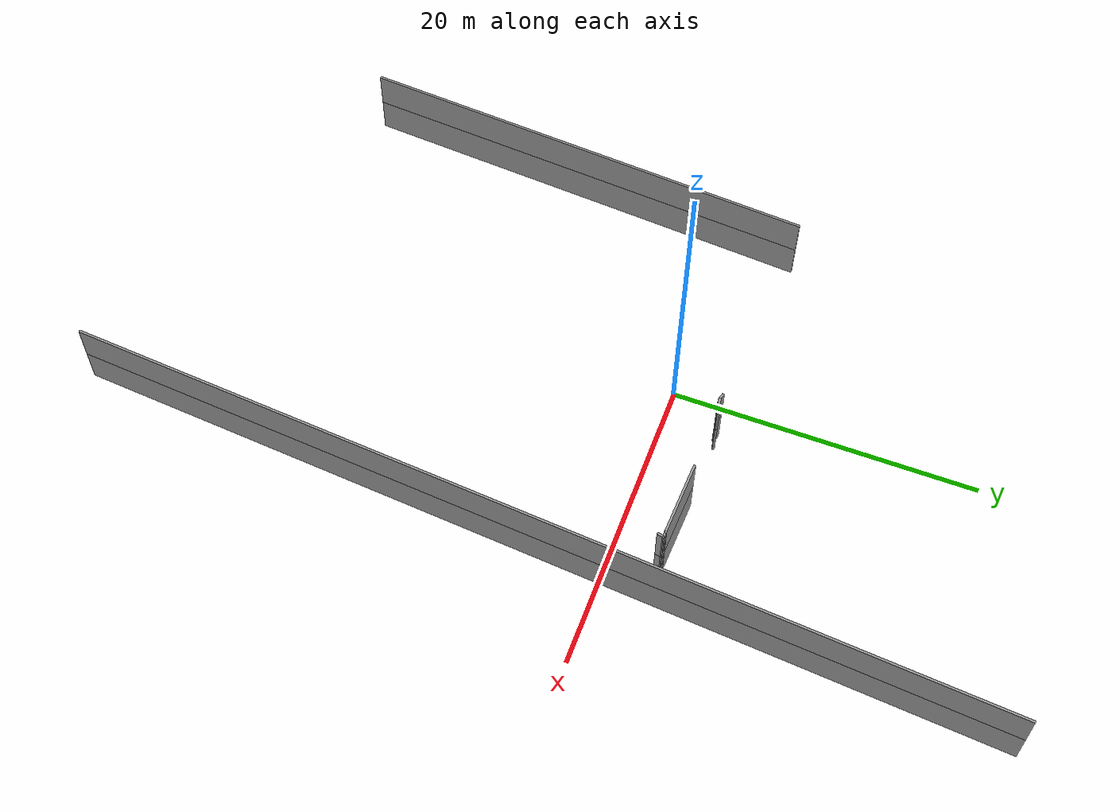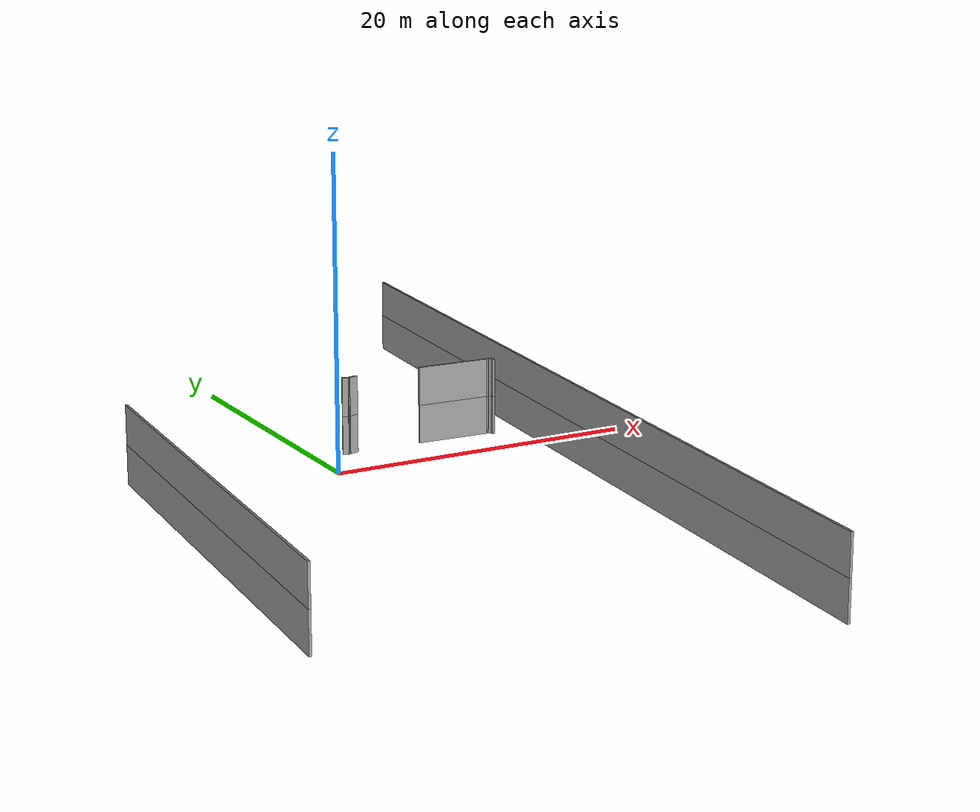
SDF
<sdf version="1.7">
 <model name="EnvDC01">
  <link name="Floor_0">
   <pose>0 0 2.5 0 -0 0</pose>
   <inertial>
    <mass>1</mass>
    <inertia><ixx>1</ixx><ixy>0</ixy><ixz>0</ixz><iyy>1</iyy><iyz>0</iyz><izz>1</izz></inertia>
   </inertial>
   <collision name="Floor_0_Collision">
    <pose>0 0 0.05 0 -0 0</pose>
    <geometry><box><size>32.7353 71.8899 0.1</size></box></geometry>
    <surface>
     <friction>
      <ode><mu>1</mu><mu2>1</mu2><fdir1>0 0 0</fdir1><slip1>0</slip1><slip2>0</slip2></ode>
      <torsional>
       <coefficient>1</coefficient>
       <patch_radius>0</patch_radius>
       <surface_radius>0</surface_radius>
       <use_patch_radius>1</use_patch_radius>
       <ode><slip>0</slip></ode>
      </torsional>
     </friction>
     <bounce><restitution_coefficient>0</restitution_coefficient><threshold>1e+06</threshold></bounce>
     <contact>
      <collide_without_contact>0</collide_without_contact>
      <collide_without_contact_bitmask>1</collide_without_contact_bitmask>
      <collide_bitmask>1</collide_bitmask>
      <ode>
       <soft_cfm>0</soft_cfm>
       <soft_erp>0.2</soft_erp>
       <kp>1e+13</kp>
       <kd>1</kd>
       <max_vel>0.01</max_vel>
       <min_depth>0</min_depth>
      </ode>
      <bullet>
       <split_impulse>1</split_impulse>
       <split_impulse_penetration_threshold>-0.01</split_impulse_penetration_threshold>
       <soft_cfm>0</soft_cfm>
       <soft_erp>0.2</soft_erp>
       <kp>1e+13</kp>
       <kd>1</kd>
      </bullet>
     </contact>
    </surface>
   </collision>
  </link>
  <link name="Wall_133">
   <pose>12.4484 3.28154 0 0 -0 3.14159</pose>
   <visual name="Wall_133_Visual">
    <pose>0 0 1.25 0 -0 0</pose>
    <geometry><box><size>0.5 0.15 2.5</size></box></geometry>
    <material>
     <script><uri>file://media/materials/scripts/gazebo.material</uri><name>Gazebo/Grey</name></script>
     <ambient>1 1 1 1</ambient>
     <shader type="pixel"/>
    </material>
    <meta><layer>0</layer></meta>
   </visual>
   <collision name="Wall_133_Collision">
    <pose>0 0 1.25 0 -0 0</pose>
    <geometry><box><size>0.5 0.15 2.5</size></box></geometry>
    <surface>
     <friction>
      <ode><mu>1</mu><mu2>1</mu2><fdir1>0 0 0</fdir1><slip1>0</slip1><slip2>0</slip2></ode>
      <torsional>
       <coefficient>1</coefficient>
       <patch_radius>0</patch_radius>
       <surface_radius>0</surface_radius>
       <use_patch_radius>1</use_patch_radius>
       <ode><slip>0</slip></ode>
      </torsional>
     </friction>
     <bounce><restitution_coefficient>0</restitution_coefficient><threshold>1e+06</threshold></bounce>
     <contact>
      <collide_without_contact>0</collide_without_contact>
      <collide_without_contact_bitmask>1</collide_without_contact_bitmask>
      <collide_bitmask>1</collide_bitmask>
      <ode>
       <soft_cfm>0</soft_cfm>
       <soft_erp>0.2</soft_erp>
       <kp>1e+13</kp>
       <kd>1</kd>
       <max_vel>0.01</max_vel>
       <min_depth>0</min_depth>
      </ode>
      <bullet>
       <split_impulse>1</split_impulse>
       <split_impulse_penetration_threshold>-0.01</split_impulse_penetration_threshold>
       <soft_cfm>0</soft_cfm>
       <soft_erp>0.2</soft_erp>
       <kp>1e+13</kp>
       <kd>1</kd>
      </bullet>
     </contact>
    </surface>
   </collision>
  </link>
  <link name="Wall_134">
   <pose>9.8712 3.37676 0 0 -0 3.10198</pose>
   <visual name="Wall_134_Visual">
    <pose>0 0 1.25 0 -0 0</pose>
    <geometry><box><size>4.9582 0.15 2.5</size></box></geometry>
    <material>
     <script><uri>file://media/materials/scripts/gazebo.material</uri><name>Gazebo/Grey</name></script>
     <ambient>1 1 1 1</ambient>
     <shader type="pixel"/>
    </material>
    <meta><layer>0</layer></meta>
   </visual>
   <collision name="Wall_134_Collision">
    <pose>0 0 1.25 0 -0 0</pose>
    <geometry><box><size>4.9582 0.15 2.5</size></box></geometry>
    <surface>
     <friction>
      <ode><mu>1</mu><mu2>1</mu2><fdir1>0 0 0</fdir1><slip1>0</slip1><slip2>0</slip2></ode>
      <torsional>
       <coefficient>1</coefficient>
       <patch_radius>0</patch_radius>
       <surface_radius>0</surface_radius>
       <use_patch_radius>1</use_patch_radius>
       <ode><slip>0</slip></ode>
      </torsional>
     </friction>
     <bounce><restitution_coefficient>0</restitution_coefficient><threshold>1e+06</threshold></bounce>
     <contact>
      <collide_without_contact>0</collide_without_contact>
      <collide_without_contact_bitmask>1</collide_without_contact_bitmask>
      <collide_bitmask>1</collide_bitmask>
      <ode>
       <soft_cfm>0</soft_cfm>
       <soft_erp>0.2</soft_erp>
       <kp>1e+13</kp>
       <kd>1</kd>
       <max_vel>0.01</max_vel>
       <min_depth>0</min_depth>
      </ode>
      <bullet>
       <split_impulse>1</split_impulse>
       <split_impulse_penetration_threshold>-0.01</split_impulse_penetration_threshold>
       <soft_cfm>0</soft_cfm>
       <soft_erp>0.2</soft_erp>
       <kp>1e+13</kp>
       <kd>1</kd>
      </bullet>
     </contact>
    </surface>
   </collision>
  </link>
  <link name="Wall_150">
   <pose>2.69471 3.51844 0 0 0 -2.87979</pose>
   <visual name="Wall_150_Visual">
    <pose>0 0 1.25 0 -0 0</pose>
    <geometry><box><size>0.75 0.15 2.5</size></box></geometry>
    <material>
     <script><uri>file://media/materials/scripts/gazebo.material</uri><name>Gazebo/Grey</name></script>
     <ambient>1 1 1 1</ambient>
     <shader type="pixel"/>
    </material>
    <meta><layer>0</layer></meta>
   </visual>
   <collision name="Wall_150_Collision">
    <pose>0 0 1.25 0 -0 0</pose>
    <geometry><box><size>0.75 0.15 2.5</size></box></geometry>
    <surface>
     <friction>
      <ode><mu>1</mu><mu2>1</mu2><fdir1>0 0 0</fdir1><slip1>0</slip1><slip2>0</slip2></ode>
      <torsional>
       <coefficient>1</coefficient>
       <patch_radius>0</patch_radius>
       <surface_radius>0</surface_radius>
       <use_patch_radius>1</use_patch_radius>
       <ode><slip>0</slip></ode>
      </torsional>
     </friction>
     <bounce><restitution_coefficient>0</restitution_coefficient><threshold>1e+06</threshold></bounce>
     <contact>
      <collide_without_contact>0</collide_without_contact>
      <collide_without_contact_bitmask>1</collide_without_contact_bitmask>
      <collide_bitmask>1</collide_bitmask>
      <ode>
       <soft_cfm>0</soft_cfm>
       <soft_erp>0.2</soft_erp>
       <kp>1e+13</kp>
       <kd>1</kd>
       <max_vel>0.01</max_vel>
       <min_depth>0</min_depth>
      </ode>
      <bullet>
       <split_impulse>1</split_impulse>
       <split_impulse_penetration_threshold>-0.01</split_impulse_penetration_threshold>
       <soft_cfm>0</soft_cfm>
       <soft_erp>0.2</soft_erp>
       <kp>1e+13</kp>
       <kd>1</kd>
      </bullet>
     </contact>
    </surface>
   </collision>
  </link>
  <link name="Wall_151">
   <pose>2.2359 3.48608 0 0 -0 2.87979</pose>
   <visual name="Wall_151_Visual">
    <pose>0 0 1.25 0 -0 0</pose>
    <geometry><box><size>0.5 0.15 2.5</size></box></geometry>
    <material>
     <script><uri>file://media/materials/scripts/gazebo.material</uri><name>Gazebo/Grey</name></script>
     <ambient>1 1 1 1</ambient>
     <shader type="pixel"/>
    </material>
    <meta><layer>0</layer></meta>
   </visual>
   <collision name="Wall_151_Collision">
    <pose>0 0 1.25 0 -0 0</pose>
    <geometry><box><size>0.5 0.15 2.5</size></box></geometry>
    <surface>
     <friction>
      <ode><mu>1</mu><mu2>1</mu2><fdir1>0 0 0</fdir1><slip1>0</slip1><slip2>0</slip2></ode>
      <torsional>
       <coefficient>1</coefficient>
       <patch_radius>0</patch_radius>
       <surface_radius>0</surface_radius>
       <use_patch_radius>1</use_patch_radius>
       <ode><slip>0</slip></ode>
      </torsional>
     </friction>
     <bounce><restitution_coefficient>0</restitution_coefficient><threshold>1e+06</threshold></bounce>
     <contact>
      <collide_without_contact>0</collide_without_contact>
      <collide_without_contact_bitmask>1</collide_without_contact_bitmask>
      <collide_bitmask>1</collide_bitmask>
      <ode>
       <soft_cfm>0</soft_cfm>
       <soft_erp>0.2</soft_erp>
       <kp>1e+13</kp>
       <kd>1</kd>
       <max_vel>0.01</max_vel>
       <min_depth>0</min_depth>
      </ode>
      <bullet>
       <split_impulse>1</split_impulse>
       <split_impulse_penetration_threshold>-0.01</split_impulse_penetration_threshold>
       <soft_cfm>0</soft_cfm>
       <soft_erp>0.2</soft_erp>
       <kp>1e+13</kp>
       <kd>1</kd>
      </bullet>
     </contact>
    </surface>
   </collision>
  </link>
  <link name="Wall_189">
   <pose>-13.1058 -11.017 0 0 0 -1.64176</pose>
   <visual name="Wall_189_Visual">
    <pose>0 0 1.25 0 -0 0</pose>
    <geometry><box><size>30.6182 0.15 2.5</size></box></geometry>
    <material>
     <script><uri>file://media/materials/scripts/gazebo.material</uri><name>Gazebo/Grey</name></script>
     <ambient>1 1 1 1</ambient>
     <shader type="pixel"/>
    </material>
    <meta><layer>0</layer></meta>
   </visual>
   <collision name="Wall_189_Collision">
    <pose>0 0 1.25 0 -0 0</pose>
    <geometry><box><size>30.6182 0.15 2.5</size></box></geometry>
    <surface>
     <friction>
      <ode><mu>1</mu><mu2>1</mu2><fdir1>0 0 0</fdir1><slip1>0</slip1><slip2>0</slip2></ode>
      <torsional>
       <coefficient>1</coefficient>
       <patch_radius>0</patch_radius>
       <surface_radius>0</surface_radius>
       <use_patch_radius>1</use_patch_radius>
       <ode><slip>0</slip></ode>
      </torsional>
     </friction>
     <bounce><restitution_coefficient>0</restitution_coefficient><threshold>1e+06</threshold></bounce>
     <contact>
      <collide_without_contact>0</collide_without_contact>
      <collide_without_contact_bitmask>1</collide_without_contact_bitmask>
      <collide_bitmask>1</collide_bitmask>
      <ode>
       <soft_cfm>0</soft_cfm>
       <soft_erp>0.2</soft_erp>
       <kp>1e+13</kp>
       <kd>1</kd>
       <max_vel>0.01</max_vel>
       <min_depth>0</min_depth>
      </ode>
      <bullet>
       <split_impulse>1</split_impulse>
       <split_impulse_penetration_threshold>-0.01</split_impulse_penetration_threshold>
       <soft_cfm>0</soft_cfm>
       <soft_erp>0.2</soft_erp>
       <kp>1e+13</kp>
       <kd>1</kd>
      </bullet>
     </contact>
    </surface>
   </collision>
  </link>
  <link name="Wall_264">
   <pose>12.5781 3.11251 2.5 0 0 -1.8326</pose>
   <visual name="Wall_264_Visual">
    <pose>0 0 1.25 0 -0 0</pose>
    <geometry><box><size>0.5 0.15 2.5</size></box></geometry>
    <material>
     <script><uri>file://media/materials/scripts/gazebo.material</uri><name>Gazebo/Grey</name></script>
     <ambient>1 1 1 1</ambient>
     <shader type="pixel"/>
    </material>
    <meta><layer>1</layer></meta>
   </visual>
   <collision name="Wall_264_Collision">
    <pose>0 0 1.25 0 -0 0</pose>
    <geometry><box><size>0.5 0.15 2.5</size></box></geometry>
    <surface>
     <friction>
      <ode><mu>1</mu><mu2>1</mu2><fdir1>0 0 0</fdir1><slip1>0</slip1><slip2>0</slip2></ode>
      <torsional>
       <coefficient>1</coefficient>
       <patch_radius>0</patch_radius>
       <surface_radius>0</surface_radius>
       <use_patch_radius>1</use_patch_radius>
       <ode><slip>0</slip></ode>
      </torsional>
     </friction>
     <bounce><restitution_coefficient>0</restitution_coefficient><threshold>1e+06</threshold></bounce>
     <contact>
      <collide_without_contact>0</collide_without_contact>
      <collide_without_contact_bitmask>1</collide_without_contact_bitmask>
      <collide_bitmask>1</collide_bitmask>
      <ode>
       <soft_cfm>0</soft_cfm>
       <soft_erp>0.2</soft_erp>
       <kp>1e+13</kp>
       <kd>1</kd>
       <max_vel>0.01</max_vel>
       <min_depth>0</min_depth>
      </ode>
      <bullet>
       <split_impulse>1</split_impulse>
       <split_impulse_penetration_threshold>-0.01</split_impulse_penetration_threshold>
       <soft_cfm>0</soft_cfm>
       <soft_erp>0.2</soft_erp>
       <kp>1e+13</kp>
       <kd>1</kd>
      </bullet>
     </contact>
    </surface>
   </collision>
  </link>
  <link name="Wall_268">
   <pose>14.0288 -4.70516 2.5 0 -0 1.49799</pose>
   <visual name="Wall_268_Visual">
    <pose>0 0 1.25 0 -0 0</pose>
    <geometry><box><size>61.9334 0.15 2.5</size></box></geometry>
    <material>
     <script><uri>file://media/materials/scripts/gazebo.material</uri><name>Gazebo/Grey</name></script>
     <ambient>1 1 1 1</ambient>
     <shader type="pixel"/>
    </material>
    <meta><layer>1</layer></meta>
   </visual>
   <collision name="Wall_268_Collision">
    <pose>0 0 1.25 0 -0 0</pose>
    <geometry><box><size>61.9334 0.15 2.5</size></box></geometry>
    <surface>
     <friction>
      <ode><mu>1</mu><mu2>1</mu2><fdir1>0 0 0</fdir1><slip1>0</slip1><slip2>0</slip2></ode>
      <torsional>
       <coefficient>1</coefficient>
       <patch_radius>0</patch_radius>
       <surface_radius>0</surface_radius>
       <use_patch_radius>1</use_patch_radius>
       <ode><slip>0</slip></ode>
      </torsional>
     </friction>
     <bounce><restitution_coefficient>0</restitution_coefficient><threshold>1e+06</threshold></bounce>
     <contact>
      <collide_without_contact>0</collide_without_contact>
      <collide_without_contact_bitmask>1</collide_without_contact_bitmask>
      <collide_bitmask>1</collide_bitmask>
      <ode>
       <soft_cfm>0</soft_cfm>
       <soft_erp>0.2</soft_erp>
       <kp>1e+13</kp>
       <kd>1</kd>
       <max_vel>0.01</max_vel>
       <min_depth>0</min_depth>
      </ode>
      <bullet>
       <split_impulse>1</split_impulse>
       <split_impulse_penetration_threshold>-0.01</split_impulse_penetration_threshold>
       <soft_cfm>0</soft_cfm>
       <soft_erp>0.2</soft_erp>
       <kp>1e+13</kp>
       <kd>1</kd>
      </bullet>
     </contact>
    </surface>
   </collision>
  </link>
  <link name="Wall_329">
   <pose>12.4484 3.28154 2.5 0 -0 3.14159</pose>
   <visual name="Wall_329_Visual">
    <pose>0 0 1.25 0 -0 0</pose>
    <geometry><box><size>0.5 0.15 2.5</size></box></geometry>
    <material>
     <script><uri>file://media/materials/scripts/gazebo.material</uri><name>Gazebo/Grey</name></script>
     <ambient>1 1 1 1</ambient>
     <shader type="pixel"/>
    </material>
    <meta><layer>1</layer></meta>
   </visual>
   <collision name="Wall_329_Collision">
    <pose>0 0 1.25 0 -0 0</pose>
    <geometry><box><size>0.5 0.15 2.5</size></box></geometry>
    <surface>
     <friction>
      <ode><mu>1</mu><mu2>1</mu2><fdir1>0 0 0</fdir1><slip1>0</slip1><slip2>0</slip2></ode>
      <torsional>
       <coefficient>1</coefficient>
       <patch_radius>0</patch_radius>
       <surface_radius>0</surface_radius>
       <use_patch_radius>1</use_patch_radius>
       <ode><slip>0</slip></ode>
      </torsional>
     </friction>
     <bounce><restitution_coefficient>0</restitution_coefficient><threshold>1e+06</threshold></bounce>
     <contact>
      <collide_without_contact>0</collide_without_contact>
      <collide_without_contact_bitmask>1</collide_without_contact_bitmask>
      <collide_bitmask>1</collide_bitmask>
      <ode>
       <soft_cfm>0</soft_cfm>
       <soft_erp>0.2</soft_erp>
       <kp>1e+13</kp>
       <kd>1</kd>
       <max_vel>0.01</max_vel>
       <min_depth>0</min_depth>
      </ode>
      <bullet>
       <split_impulse>1</split_impulse>
       <split_impulse_penetration_threshold>-0.01</split_impulse_penetration_threshold>
       <soft_cfm>0</soft_cfm>
       <soft_erp>0.2</soft_erp>
       <kp>1e+13</kp>
       <kd>1</kd>
      </bullet>
     </contact>
    </surface>
   </collision>
  </link>
  <link name="Wall_330">
   <pose>9.8712 3.37676 2.5 0 -0 3.10198</pose>
   <visual name="Wall_330_Visual">
    <pose>0 0 1.25 0 -0 0</pose>
    <geometry><box><size>4.9582 0.15 2.5</size></box></geometry>
    <material>
     <script><uri>file://media/materials/scripts/gazebo.material</uri><name>Gazebo/Grey</name></script>
     <ambient>1 1 1 1</ambient>
     <shader type="pixel"/>
    </material>
    <meta><layer>1</layer></meta>
   </visual>
   <collision name="Wall_330_Collision">
    <pose>0 0 1.25 0 -0 0</pose>
    <geometry><box><size>4.9582 0.15 2.5</size></box></geometry>
    <surface>
     <friction>
      <ode><mu>1</mu><mu2>1</mu2><fdir1>0 0 0</fdir1><slip1>0</slip1><slip2>0</slip2></ode>
      <torsional>
       <coefficient>1</coefficient>
       <patch_radius>0</patch_radius>
       <surface_radius>0</surface_radius>
       <use_patch_radius>1</use_patch_radius>
       <ode><slip>0</slip></ode>
      </torsional>
     </friction>
     <bounce><restitution_coefficient>0</restitution_coefficient><threshold>1e+06</threshold></bounce>
     <contact>
      <collide_without_contact>0</collide_without_contact>
      <collide_without_contact_bitmask>1</collide_without_contact_bitmask>
      <collide_bitmask>1</collide_bitmask>
      <ode>
       <soft_cfm>0</soft_cfm>
       <soft_erp>0.2</soft_erp>
       <kp>1e+13</kp>
       <kd>1</kd>
       <max_vel>0.01</max_vel>
       <min_depth>0</min_depth>
      </ode>
      <bullet>
       <split_impulse>1</split_impulse>
       <split_impulse_penetration_threshold>-0.01</split_impulse_penetration_threshold>
       <soft_cfm>0</soft_cfm>
       <soft_erp>0.2</soft_erp>
       <kp>1e+13</kp>
       <kd>1</kd>
      </bullet>
     </contact>
    </surface>
   </collision>
  </link>
  <link name="Wall_339">
   <pose>2.69471 3.51844 2.5 0 0 -2.87979</pose>
   <visual name="Wall_339_Visual">
    <pose>0 0 1.25 0 -0 0</pose>
    <geometry><box><size>0.75 0.15 2.5</size></box></geometry>
    <material>
     <script><uri>file://media/materials/scripts/gazebo.material</uri><name>Gazebo/Grey</name></script>
     <ambient>1 1 1 1</ambient>
     <shader type="pixel"/>
    </material>
    <meta><layer>1</layer></meta>
   </visual>
   <collision name="Wall_339_Collision">
    <pose>0 0 1.25 0 -0 0</pose>
    <geometry><box><size>0.75 0.15 2.5</size></box></geometry>
    <surface>
     <friction>
      <ode><mu>1</mu><mu2>1</mu2><fdir1>0 0 0</fdir1><slip1>0</slip1><slip2>0</slip2></ode>
      <torsional>
       <coefficient>1</coefficient>
       <patch_radius>0</patch_radius>
       <surface_radius>0</surface_radius>
       <use_patch_radius>1</use_patch_radius>
       <ode><slip>0</slip></ode>
      </torsional>
     </friction>
     <bounce><restitution_coefficient>0</restitution_coefficient><threshold>1e+06</threshold></bounce>
     <contact>
      <collide_without_contact>0</collide_without_contact>
      <collide_without_contact_bitmask>1</collide_without_contact_bitmask>
      <collide_bitmask>1</collide_bitmask>
      <ode>
       <soft_cfm>0</soft_cfm>
       <soft_erp>0.2</soft_erp>
       <kp>1e+13</kp>
       <kd>1</kd>
       <max_vel>0.01</max_vel>
       <min_depth>0</min_depth>
      </ode>
      <bullet>
       <split_impulse>1</split_impulse>
       <split_impulse_penetration_threshold>-0.01</split_impulse_penetration_threshold>
       <soft_cfm>0</soft_cfm>
       <soft_erp>0.2</soft_erp>
       <kp>1e+13</kp>
       <kd>1</kd>
      </bullet>
     </contact>
    </surface>
   </collision>
  </link>
  <link name="Wall_340">
   <pose>2.2359 3.48608 2.5 0 -0 2.87979</pose>
   <visual name="Wall_340_Visual">
    <pose>0 0 1.25 0 -0 0</pose>
    <geometry><box><size>0.5 0.15 2.5</size></box></geometry>
    <material>
     <script><uri>file://media/materials/scripts/gazebo.material</uri><name>Gazebo/Grey</name></script>
     <ambient>1 1 1 1</ambient>
     <shader type="pixel"/>
    </material>
    <meta><layer>1</layer></meta>
   </visual>
   <collision name="Wall_340_Collision">
    <pose>0 0 1.25 0 -0 0</pose>
    <geometry><box><size>0.5 0.15 2.5</size></box></geometry>
    <surface>
     <friction>
      <ode><mu>1</mu><mu2>1</mu2><fdir1>0 0 0</fdir1><slip1>0</slip1><slip2>0</slip2></ode>
      <torsional>
       <coefficient>1</coefficient>
       <patch_radius>0</patch_radius>
       <surface_radius>0</surface_radius>
       <use_patch_radius>1</use_patch_radius>
       <ode><slip>0</slip></ode>
      </torsional>
     </friction>
     <bounce><restitution_coefficient>0</restitution_coefficient><threshold>1e+06</threshold></bounce>
     <contact>
      <collide_without_contact>0</collide_without_contact>
      <collide_without_contact_bitmask>1</collide_without_contact_bitmask>
      <collide_bitmask>1</collide_bitmask>
      <ode>
       <soft_cfm>0</soft_cfm>
       <soft_erp>0.2</soft_erp>
       <kp>1e+13</kp>
       <kd>1</kd>
       <max_vel>0.01</max_vel>
       <min_depth>0</min_depth>
      </ode>
      <bullet>
       <split_impulse>1</split_impulse>
       <split_impulse_penetration_threshold>-0.01</split_impulse_penetration_threshold>
       <soft_cfm>0</soft_cfm>
       <soft_erp>0.2</soft_erp>
       <kp>1e+13</kp>
       <kd>1</kd>
      </bullet>
     </contact>
    </surface>
   </collision>
  </link>
  <link name="Wall_366">
   <pose>-13.1058 -11.017 2.5 0 0 -1.64176</pose>
   <visual name="Wall_366_Visual">
    <pose>0 0 1.25 0 -0 0</pose>
    <geometry><box><size>30.6182 0.15 2.5</size></box></geometry>
    <material>
     <script><uri>file://media/materials/scripts/gazebo.material</uri><name>Gazebo/Grey</name></script>
     <ambient>1 1 1 1</ambient>
     <shader type="pixel"/>
    </material>
    <meta><layer>1</layer></meta>
   </visual>
   <collision name="Wall_366_Collision">
    <pose>0 0 1.25 0 -0 0</pose>
    <geometry><box><size>30.6182 0.15 2.5</size></box></geometry>
    <surface>
     <friction>
      <ode><mu>1</mu><mu2>1</mu2><fdir1>0 0 0</fdir1><slip1>0</slip1><slip2>0</slip2></ode>
      <torsional>
       <coefficient>1</coefficient>
       <patch_radius>0</patch_radius>
       <surface_radius>0</surface_radius>
       <use_patch_radius>1</use_patch_radius>
       <ode><slip>0</slip></ode>
      </torsional>
     </friction>
     <bounce><restitution_coefficient>0</restitution_coefficient><threshold>1e+06</threshold></bounce>
     <contact>
      <collide_without_contact>0</collide_without_contact>
      <collide_without_contact_bitmask>1</collide_without_contact_bitmask>
      <collide_bitmask>1</collide_bitmask>
      <ode>
       <soft_cfm>0</soft_cfm>
       <soft_erp>0.2</soft_erp>
       <kp>1e+13</kp>
       <kd>1</kd>
       <max_vel>0.01</max_vel>
       <min_depth>0</min_depth>
      </ode>
      <bullet>
       <split_impulse>1</split_impulse>
       <split_impulse_penetration_threshold>-0.01</split_impulse_penetration_threshold>
       <soft_cfm>0</soft_cfm>
       <soft_erp>0.2</soft_erp>
       <kp>1e+13</kp>
       <kd>1</kd>
      </bullet>
     </contact>
    </surface>
   </collision>
  </link>
  <link name="Wall_38">
   <pose>12.5781 3.11251 0 0 0 -1.8326</pose>
   <visual name="Wall_38_Visual">
    <pose>0 0 1.25 0 -0 0</pose>
    <geometry><box><size>0.5 0.15 2.5</size></box></geometry>
    <material>
     <script><uri>file://media/materials/scripts/gazebo.material</uri><name>Gazebo/Grey</name></script>
     <ambient>1 1 1 1</ambient>
     <shader type="pixel"/>
    </material>
    <meta><layer>0</layer></meta>
   </visual>
   <collision name="Wall_38_Collision">
    <pose>0 0 1.25 0 -0 0</pose>
    <geometry><box><size>0.5 0.15 2.5</size></box></geometry>
    <surface>
     <friction>
      <ode><mu>1</mu><mu2>1</mu2><fdir1>0 0 0</fdir1><slip1>0</slip1><slip2>0</slip2></ode>
      <torsional>
       <coefficient>1</coefficient>
       <patch_radius>0</patch_radius>
       <surface_radius>0</surface_radius>
       <use_patch_radius>1</use_patch_radius>
       <ode><slip>0</slip></ode>
      </torsional>
     </friction>
     <bounce><restitution_coefficient>0</restitution_coefficient><threshold>1e+06</threshold></bounce>
     <contact>
      <collide_without_contact>0</collide_without_contact>
      <collide_without_contact_bitmask>1</collide_without_contact_bitmask>
      <collide_bitmask>1</collide_bitmask>
      <ode>
       <soft_cfm>0</soft_cfm>
       <soft_erp>0.2</soft_erp>
       <kp>1e+13</kp>
       <kd>1</kd>
       <max_vel>0.01</max_vel>
       <min_depth>0</min_depth>
      </ode>
      <bullet>
       <split_impulse>1</split_impulse>
       <split_impulse_penetration_threshold>-0.01</split_impulse_penetration_threshold>
       <soft_cfm>0</soft_cfm>
       <soft_erp>0.2</soft_erp>
       <kp>1e+13</kp>
       <kd>1</kd>
      </bullet>
     </contact>
    </surface>
   </collision>
  </link>
  <link name="Wall_44">
   <pose>14.0288 -4.70516 0 0 -0 1.49799</pose>
   <visual name="Wall_44_Visual">
    <pose>0 0 1.25 0 -0 0</pose>
    <geometry><box><size>61.9334 0.15 2.5</size></box></geometry>
    <material>
     <script><uri>file://media/materials/scripts/gazebo.material</uri><name>Gazebo/Grey</name></script>
     <ambient>1 1 1 1</ambient>
     <shader type="pixel"/>
    </material>
    <meta><layer>0</layer></meta>
   </visual>
   <collision name="Wall_44_Collision">
    <pose>0 0 1.25 0 -0 0</pose>
    <geometry><box><size>61.9334 0.15 2.5</size></box></geometry>
    <surface>
     <friction>
      <ode><mu>1</mu><mu2>1</mu2><fdir1>0 0 0</fdir1><slip1>0</slip1><slip2>0</slip2></ode>
      <torsional>
       <coefficient>1</coefficient>
       <patch_radius>0</patch_radius>
       <surface_radius>0</surface_radius>
       <use_patch_radius>1</use_patch_radius>
       <ode><slip>0</slip></ode>
      </torsional>
     </friction>
     <bounce><restitution_coefficient>0</restitution_coefficient><threshold>1e+06</threshold></bounce>
     <contact>
      <collide_without_contact>0</collide_without_contact>
      <collide_without_contact_bitmask>1</collide_without_contact_bitmask>
      <collide_bitmask>1</collide_bitmask>
      <ode>
       <soft_cfm>0</soft_cfm>
       <soft_erp>0.2</soft_erp>
       <kp>1e+13</kp>
       <kd>1</kd>
       <max_vel>0.01</max_vel>
       <min_depth>0</min_depth>
      </ode>
      <bullet>
       <split_impulse>1</split_impulse>
       <split_impulse_penetration_threshold>-0.01</split_impulse_penetration_threshold>
       <soft_cfm>0</soft_cfm>
       <soft_erp>0.2</soft_erp>
       <kp>1e+13</kp>
       <kd>1</kd>
      </bullet>
     </contact>
    </surface>
   </collision>
  </link>
  <static>1</static>
 </model>
</sdf>
